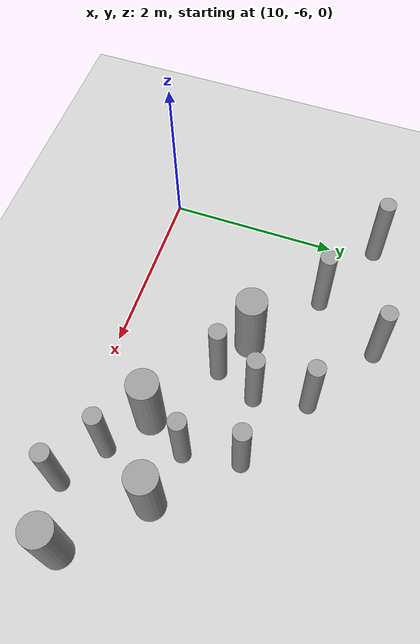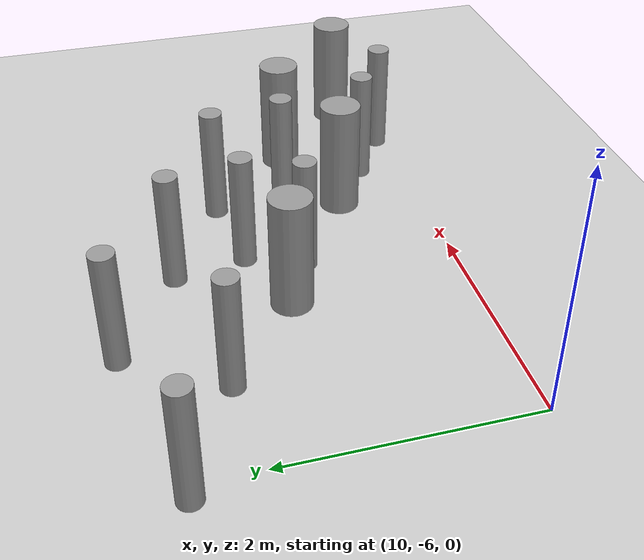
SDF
<sdf version="1.6">
 <world name="default">
  <model name="ground_plane">
   <static>1</static>
   <link name="link">
    <collision name="collision">
     <geometry><plane><normal>0 0 1</normal><size>100 100</size></plane></geometry>
     <surface><friction><ode><mu>100</mu><mu2>50</mu2></ode></friction></surface>
    </collision>
    <visual name="visual">
     <cast_shadows>0</cast_shadows>
     <geometry><plane><normal>0 0 1</normal><size>100 100</size></plane></geometry>
     <material>
      <script><uri>file://media/materials/scripts/gazebo.material</uri><name>Gazebo/Grey</name></script>
     </material>
    </visual>
   </link>
  </model>
  <model name="cyl_wall_clone_clone_1_clone">
   <link name="link_0">
    <pose>-2.73893 -0.366465 0 0 -0 0</pose>
    <inertial>
     <mass>0.0374993</mass>
     <inertia>
      <ixx>0.00321281</ixx>
      <ixy>0</ixy>
      <ixz>0</ixz>
      <iyy>0.00321281</iyy>
      <iyz>0</iyz>
      <izz>0.000175774</izz>
     </inertia>
    </inertial>
    <visual name="visual">
     <geometry><cylinder><radius>0.0968661</radius><length>1</length></cylinder></geometry>
     <material>
      <lighting>1</lighting>
      <script><uri>file://media/materials/scripts/gazebo.material</uri><name>Gazebo/Grey</name></script>
      <ambient>0.3 0.3 0.3 1</ambient>
      <diffuse>0.7 0.7 0.7 1</diffuse>
      <specular>0.01 0.01 0.01 1</specular>
      <emissive>0 0 0 1</emissive>
     </material>
    </visual>
    <collision name="collision">
     <geometry><cylinder><radius>0.096866</radius><length>1</length></cylinder></geometry>
     <surface>
      <friction>
       <ode><mu>1</mu><mu2>1</mu2><fdir1>0 0 0</fdir1><slip1>0</slip1><slip2>0</slip2></ode>
       <torsional>
        <coefficient>1</coefficient>
        <patch_radius>0</patch_radius>
        <surface_radius>0</surface_radius>
        <use_patch_radius>1</use_patch_radius>
        <ode><slip>0</slip></ode>
       </torsional>
      </friction>
      <bounce><restitution_coefficient>0</restitution_coefficient><threshold>1e+06</threshold></bounce>
      <contact>
       <collide_without_contact>0</collide_without_contact>
       <collide_without_contact_bitmask>1</collide_without_contact_bitmask>
       <collide_bitmask>1</collide_bitmask>
       <ode>
        <soft_cfm>0</soft_cfm>
        <soft_erp>0.2</soft_erp>
        <kp>1e+13</kp>
        <kd>1</kd>
        <max_vel>0.01</max_vel>
        <min_depth>0</min_depth>
       </ode>
       <bullet>
        <split_impulse>1</split_impulse>
        <split_impulse_penetration_threshold>-0.01</split_impulse_penetration_threshold>
        <soft_cfm>0</soft_cfm>
        <soft_erp>0.2</soft_erp>
        <kp>1e+13</kp>
        <kd>1</kd>
       </bullet>
      </contact>
     </surface>
    </collision>
   </link>
   <link name="link_0_clone">
    <pose>-1.73893 0.61877 0 0 -0 0</pose>
    <inertial>
     <mass>0.0374993</mass>
     <inertia>
      <ixx>0.00321281</ixx>
      <ixy>0</ixy>
      <ixz>0</ixz>
      <iyy>0.00321281</iyy>
      <iyz>0</iyz>
      <izz>0.000175774</izz>
     </inertia>
    </inertial>
    <visual name="visual">
     <geometry><cylinder><radius>0.0968661</radius><length>1</length></cylinder></geometry>
     <material>
      <lighting>1</lighting>
      <script><uri>file://media/materials/scripts/gazebo.material</uri><name>Gazebo/Grey</name></script>
      <ambient>0.3 0.3 0.3 1</ambient>
      <diffuse>0.7 0.7 0.7 1</diffuse>
      <specular>0.01 0.01 0.01 1</specular>
      <emissive>0 0 0 1</emissive>
      <shader type="pixel"/>
     </material>
    </visual>
    <collision name="collision">
     <geometry><cylinder><radius>0.096866</radius><length>1</length></cylinder></geometry>
     <surface>
      <friction>
       <ode><mu>1</mu><mu2>1</mu2><fdir1>0 0 0</fdir1><slip1>0</slip1><slip2>0</slip2></ode>
       <torsional>
        <coefficient>1</coefficient>
        <patch_radius>0</patch_radius>
        <surface_radius>0</surface_radius>
        <use_patch_radius>1</use_patch_radius>
        <ode><slip>0</slip></ode>
       </torsional>
      </friction>
      <bounce><restitution_coefficient>0</restitution_coefficient><threshold>1e+06</threshold></bounce>
      <contact>
       <collide_without_contact>0</collide_without_contact>
       <collide_without_contact_bitmask>1</collide_without_contact_bitmask>
       <collide_bitmask>1</collide_bitmask>
       <ode>
        <soft_cfm>0</soft_cfm>
        <soft_erp>0.2</soft_erp>
        <kp>1e+13</kp>
        <kd>1</kd>
        <max_vel>0.01</max_vel>
        <min_depth>0</min_depth>
       </ode>
       <bullet>
        <split_impulse>1</split_impulse>
        <split_impulse_penetration_threshold>-0.01</split_impulse_penetration_threshold>
        <soft_cfm>0</soft_cfm>
        <soft_erp>0.2</soft_erp>
        <kp>1e+13</kp>
        <kd>1</kd>
       </bullet>
      </contact>
     </surface>
    </collision>
   </link>
   <link name="link_0_clone_clone">
    <pose>-0.327073 0.143919 0 0 -0 0</pose>
    <inertial>
     <mass>0.0374993</mass>
     <inertia>
      <ixx>0.00321281</ixx>
      <ixy>0</ixy>
      <ixz>0</ixz>
      <iyy>0.00321281</iyy>
      <iyz>0</iyz>
      <izz>0.000175774</izz>
     </inertia>
    </inertial>
    <visual name="visual">
     <geometry><cylinder><radius>0.0968661</radius><length>1</length></cylinder></geometry>
     <material>
      <lighting>1</lighting>
      <script><uri>file://media/materials/scripts/gazebo.material</uri><name>Gazebo/Grey</name></script>
      <ambient>0.3 0.3 0.3 1</ambient>
      <diffuse>0.7 0.7 0.7 1</diffuse>
      <specular>0.01 0.01 0.01 1</specular>
      <emissive>0 0 0 1</emissive>
      <shader type="pixel"/>
     </material>
    </visual>
    <collision name="collision">
     <geometry><cylinder><radius>0.096866</radius><length>1</length></cylinder></geometry>
     <surface>
      <friction>
       <ode><mu>1</mu><mu2>1</mu2><fdir1>0 0 0</fdir1><slip1>0</slip1><slip2>0</slip2></ode>
       <torsional>
        <coefficient>1</coefficient>
        <patch_radius>0</patch_radius>
        <surface_radius>0</surface_radius>
        <use_patch_radius>1</use_patch_radius>
        <ode><slip>0</slip></ode>
       </torsional>
      </friction>
      <bounce><restitution_coefficient>0</restitution_coefficient><threshold>1e+06</threshold></bounce>
      <contact>
       <collide_without_contact>0</collide_without_contact>
       <collide_without_contact_bitmask>1</collide_without_contact_bitmask>
       <collide_bitmask>1</collide_bitmask>
       <ode>
        <soft_cfm>0</soft_cfm>
        <soft_erp>0.2</soft_erp>
        <kp>1e+13</kp>
        <kd>1</kd>
        <max_vel>0.01</max_vel>
        <min_depth>0</min_depth>
       </ode>
       <bullet>
        <split_impulse>1</split_impulse>
        <split_impulse_penetration_threshold>-0.01</split_impulse_penetration_threshold>
        <soft_cfm>0</soft_cfm>
        <soft_erp>0.2</soft_erp>
        <kp>1e+13</kp>
        <kd>1</kd>
       </bullet>
      </contact>
     </surface>
    </collision>
   </link>
   <link name="link_0_clone_clone_0">
    <pose>1.26107 -0.419359 0 0 -0 0</pose>
    <inertial>
     <mass>0.0374993</mass>
     <inertia>
      <ixx>0.00321281</ixx>
      <ixy>0</ixy>
      <ixz>0</ixz>
      <iyy>0.00321281</iyy>
      <iyz>0</iyz>
      <izz>0.000175774</izz>
     </inertia>
    </inertial>
    <visual name="visual">
     <geometry><cylinder><radius>0.0968661</radius><length>1</length></cylinder></geometry>
     <material>
      <lighting>1</lighting>
      <script><uri>file://media/materials/scripts/gazebo.material</uri><name>Gazebo/Grey</name></script>
      <ambient>0.3 0.3 0.3 1</ambient>
      <diffuse>0.7 0.7 0.7 1</diffuse>
      <specular>0.01 0.01 0.01 1</specular>
      <emissive>0 0 0 1</emissive>
      <shader type="pixel"/>
     </material>
    </visual>
    <collision name="collision">
     <geometry><cylinder><radius>0.096866</radius><length>1</length></cylinder></geometry>
     <surface>
      <friction>
       <ode><mu>1</mu><mu2>1</mu2><fdir1>0 0 0</fdir1><slip1>0</slip1><slip2>0</slip2></ode>
       <torsional>
        <coefficient>1</coefficient>
        <patch_radius>0</patch_radius>
        <surface_radius>0</surface_radius>
        <use_patch_radius>1</use_patch_radius>
        <ode><slip>0</slip></ode>
       </torsional>
      </friction>
      <bounce><restitution_coefficient>0</restitution_coefficient><threshold>1e+06</threshold></bounce>
      <contact>
       <collide_without_contact>0</collide_without_contact>
       <collide_without_contact_bitmask>1</collide_without_contact_bitmask>
       <collide_bitmask>1</collide_bitmask>
       <ode>
        <soft_cfm>0</soft_cfm>
        <soft_erp>0.2</soft_erp>
        <kp>1e+13</kp>
        <kd>1</kd>
        <max_vel>0.01</max_vel>
        <min_depth>0</min_depth>
       </ode>
       <bullet>
        <split_impulse>1</split_impulse>
        <split_impulse_penetration_threshold>-0.01</split_impulse_penetration_threshold>
        <soft_cfm>0</soft_cfm>
        <soft_erp>0.2</soft_erp>
        <kp>1e+13</kp>
        <kd>1</kd>
       </bullet>
      </contact>
     </surface>
    </collision>
   </link>
   <link name="link_0_clone_clone_1">
    <pose>-1.73893 -0.277168 0 0 -0 0</pose>
    <inertial>
     <mass>0.0374993</mass>
     <inertia>
      <ixx>0.00321281</ixx>
      <ixy>0</ixy>
      <ixz>0</ixz>
      <iyy>0.00321281</iyy>
      <iyz>0</iyz>
      <izz>0.000175774</izz>
     </inertia>
    </inertial>
    <visual name="visual">
     <geometry><cylinder><radius>0.0968661</radius><length>1</length></cylinder></geometry>
     <material>
      <lighting>1</lighting>
      <script><uri>file://media/materials/scripts/gazebo.material</uri><name>Gazebo/Grey</name></script>
      <ambient>0.3 0.3 0.3 1</ambient>
      <diffuse>0.7 0.7 0.7 1</diffuse>
      <specular>0.01 0.01 0.01 1</specular>
      <emissive>0 0 0 1</emissive>
      <shader type="pixel"/>
     </material>
    </visual>
    <collision name="collision">
     <geometry><cylinder><radius>0.096866</radius><length>1</length></cylinder></geometry>
     <surface>
      <friction>
       <ode><mu>1</mu><mu2>1</mu2><fdir1>0 0 0</fdir1><slip1>0</slip1><slip2>0</slip2></ode>
       <torsional>
        <coefficient>1</coefficient>
        <patch_radius>0</patch_radius>
        <surface_radius>0</surface_radius>
        <use_patch_radius>1</use_patch_radius>
        <ode><slip>0</slip></ode>
       </torsional>
      </friction>
      <bounce><restitution_coefficient>0</restitution_coefficient><threshold>1e+06</threshold></bounce>
      <contact>
       <collide_without_contact>0</collide_without_contact>
       <collide_without_contact_bitmask>1</collide_without_contact_bitmask>
       <collide_bitmask>1</collide_bitmask>
       <ode>
        <soft_cfm>0</soft_cfm>
        <soft_erp>0.2</soft_erp>
        <kp>1e+13</kp>
        <kd>1</kd>
        <max_vel>0.01</max_vel>
        <min_depth>0</min_depth>
       </ode>
       <bullet>
        <split_impulse>1</split_impulse>
        <split_impulse_penetration_threshold>-0.01</split_impulse_penetration_threshold>
        <soft_cfm>0</soft_cfm>
        <soft_erp>0.2</soft_erp>
        <kp>1e+13</kp>
        <kd>1</kd>
       </bullet>
      </contact>
     </surface>
    </collision>
   </link>
   <link name="link_0_clone_clone_2">
    <pose>-0.738934 0.593961 0 0 -0 0</pose>
    <inertial>
     <mass>0.0374993</mass>
     <inertia>
      <ixx>0.00321281</ixx>
      <ixy>0</ixy>
      <ixz>0</ixz>
      <iyy>0.00321281</iyy>
      <iyz>0</iyz>
      <izz>0.000175774</izz>
     </inertia>
    </inertial>
    <visual name="visual">
     <geometry><cylinder><radius>0.0968661</radius><length>1</length></cylinder></geometry>
     <material>
      <lighting>1</lighting>
      <script><uri>file://media/materials/scripts/gazebo.material</uri><name>Gazebo/Grey</name></script>
      <ambient>0.3 0.3 0.3 1</ambient>
      <diffuse>0.7 0.7 0.7 1</diffuse>
      <specular>0.01 0.01 0.01 1</specular>
      <emissive>0 0 0 1</emissive>
      <shader type="pixel"/>
     </material>
    </visual>
    <collision name="collision">
     <geometry><cylinder><radius>0.096866</radius><length>1</length></cylinder></geometry>
     <surface>
      <friction>
       <ode><mu>1</mu><mu2>1</mu2><fdir1>0 0 0</fdir1><slip1>0</slip1><slip2>0</slip2></ode>
       <torsional>
        <coefficient>1</coefficient>
        <patch_radius>0</patch_radius>
        <surface_radius>0</surface_radius>
        <use_patch_radius>1</use_patch_radius>
        <ode><slip>0</slip></ode>
       </torsional>
      </friction>
      <bounce><restitution_coefficient>0</restitution_coefficient><threshold>1e+06</threshold></bounce>
      <contact>
       <collide_without_contact>0</collide_without_contact>
       <collide_without_contact_bitmask>1</collide_without_contact_bitmask>
       <collide_bitmask>1</collide_bitmask>
       <ode>
        <soft_cfm>0</soft_cfm>
        <soft_erp>0.2</soft_erp>
        <kp>1e+13</kp>
        <kd>1</kd>
        <max_vel>0.01</max_vel>
        <min_depth>0</min_depth>
       </ode>
       <bullet>
        <split_impulse>1</split_impulse>
        <split_impulse_penetration_threshold>-0.01</split_impulse_penetration_threshold>
        <soft_cfm>0</soft_cfm>
        <soft_erp>0.2</soft_erp>
        <kp>1e+13</kp>
        <kd>1</kd>
       </bullet>
      </contact>
     </surface>
    </collision>
   </link>
   <link name="link_0_clone_clone_3">
    <pose>0.261066 0.624849 0 0 -0 0</pose>
    <inertial>
     <mass>0.0374993</mass>
     <inertia>
      <ixx>0.00321281</ixx>
      <ixy>0</ixy>
      <ixz>0</ixz>
      <iyy>0.00321281</iyy>
      <iyz>0</iyz>
      <izz>0.000175774</izz>
     </inertia>
    </inertial>
    <visual name="visual">
     <geometry><cylinder><radius>0.0968661</radius><length>1</length></cylinder></geometry>
     <material>
      <lighting>1</lighting>
      <script><uri>file://media/materials/scripts/gazebo.material</uri><name>Gazebo/Grey</name></script>
      <ambient>0.3 0.3 0.3 1</ambient>
      <diffuse>0.7 0.7 0.7 1</diffuse>
      <specular>0.01 0.01 0.01 1</specular>
      <emissive>0 0 0 1</emissive>
      <shader type="pixel"/>
     </material>
    </visual>
    <collision name="collision">
     <geometry><cylinder><radius>0.096866</radius><length>1</length></cylinder></geometry>
     <surface>
      <friction>
       <ode><mu>1</mu><mu2>1</mu2><fdir1>0 0 0</fdir1><slip1>0</slip1><slip2>0</slip2></ode>
       <torsional>
        <coefficient>1</coefficient>
        <patch_radius>0</patch_radius>
        <surface_radius>0</surface_radius>
        <use_patch_radius>1</use_patch_radius>
        <ode><slip>0</slip></ode>
       </torsional>
      </friction>
      <bounce><restitution_coefficient>0</restitution_coefficient><threshold>1e+06</threshold></bounce>
      <contact>
       <collide_without_contact>0</collide_without_contact>
       <collide_without_contact_bitmask>1</collide_without_contact_bitmask>
       <collide_bitmask>1</collide_bitmask>
       <ode>
        <soft_cfm>0</soft_cfm>
        <soft_erp>0.2</soft_erp>
        <kp>1e+13</kp>
        <kd>1</kd>
        <max_vel>0.01</max_vel>
        <min_depth>0</min_depth>
       </ode>
       <bullet>
        <split_impulse>1</split_impulse>
        <split_impulse_penetration_threshold>-0.01</split_impulse_penetration_threshold>
        <soft_cfm>0</soft_cfm>
        <soft_erp>0.2</soft_erp>
        <kp>1e+13</kp>
        <kd>1</kd>
       </bullet>
      </contact>
     </surface>
    </collision>
   </link>
   <link name="link_0_clone_clone_4">
    <pose>-0.239049 -0.353105 0 0 -0 0</pose>
    <inertial>
     <mass>0.0374993</mass>
     <inertia>
      <ixx>0.00321281</ixx>
      <ixy>0</ixy>
      <ixz>0</ixz>
      <iyy>0.00321281</iyy>
      <iyz>0</iyz>
      <izz>0.000175774</izz>
     </inertia>
    </inertial>
    <visual name="visual">
     <geometry><cylinder><radius>0.0968661</radius><length>1</length></cylinder></geometry>
     <material>
      <lighting>1</lighting>
      <script><uri>file://media/materials/scripts/gazebo.material</uri><name>Gazebo/Grey</name></script>
      <ambient>0.3 0.3 0.3 1</ambient>
      <diffuse>0.7 0.7 0.7 1</diffuse>
      <specular>0.01 0.01 0.01 1</specular>
      <emissive>0 0 0 1</emissive>
      <shader type="pixel"/>
     </material>
    </visual>
    <collision name="collision">
     <geometry><cylinder><radius>0.096866</radius><length>1</length></cylinder></geometry>
     <surface>
      <friction>
       <ode><mu>1</mu><mu2>1</mu2><fdir1>0 0 0</fdir1><slip1>0</slip1><slip2>0</slip2></ode>
       <torsional>
        <coefficient>1</coefficient>
        <patch_radius>0</patch_radius>
        <surface_radius>0</surface_radius>
        <use_patch_radius>1</use_patch_radius>
        <ode><slip>0</slip></ode>
       </torsional>
      </friction>
      <bounce><restitution_coefficient>0</restitution_coefficient><threshold>1e+06</threshold></bounce>
      <contact>
       <collide_without_contact>0</collide_without_contact>
       <collide_without_contact_bitmask>1</collide_without_contact_bitmask>
       <collide_bitmask>1</collide_bitmask>
       <ode>
        <soft_cfm>0</soft_cfm>
        <soft_erp>0.2</soft_erp>
        <kp>1e+13</kp>
        <kd>1</kd>
        <max_vel>0.01</max_vel>
        <min_depth>0</min_depth>
       </ode>
       <bullet>
        <split_impulse>1</split_impulse>
        <split_impulse_penetration_threshold>-0.01</split_impulse_penetration_threshold>
        <soft_cfm>0</soft_cfm>
        <soft_erp>0.2</soft_erp>
        <kp>1e+13</kp>
        <kd>1</kd>
       </bullet>
      </contact>
     </surface>
    </collision>
   </link>
   <link name="link_0_clone_clone_5">
    <pose>0.672792 0.143919 0 0 -0 0</pose>
    <inertial>
     <mass>0.0374993</mass>
     <inertia>
      <ixx>0.00321281</ixx>
      <ixy>0</ixy>
      <ixz>0</ixz>
      <iyy>0.00321281</iyy>
      <iyz>0</iyz>
      <izz>0.000175774</izz>
     </inertia>
    </inertial>
    <visual name="visual">
     <geometry><cylinder><radius>0.0968661</radius><length>1</length></cylinder></geometry>
     <material>
      <lighting>1</lighting>
      <script><uri>file://media/materials/scripts/gazebo.material</uri><name>Gazebo/Grey</name></script>
      <ambient>0.3 0.3 0.3 1</ambient>
      <diffuse>0.7 0.7 0.7 1</diffuse>
      <specular>0.01 0.01 0.01 1</specular>
      <emissive>0 0 0 1</emissive>
      <shader type="pixel"/>
     </material>
    </visual>
    <collision name="collision">
     <geometry><cylinder><radius>0.096866</radius><length>1</length></cylinder></geometry>
     <surface>
      <friction>
       <ode><mu>1</mu><mu2>1</mu2><fdir1>0 0 0</fdir1><slip1>0</slip1><slip2>0</slip2></ode>
       <torsional>
        <coefficient>1</coefficient>
        <patch_radius>0</patch_radius>
        <surface_radius>0</surface_radius>
        <use_patch_radius>1</use_patch_radius>
        <ode><slip>0</slip></ode>
       </torsional>
      </friction>
      <bounce><restitution_coefficient>0</restitution_coefficient><threshold>1e+06</threshold></bounce>
      <contact>
       <collide_without_contact>0</collide_without_contact>
       <collide_without_contact_bitmask>1</collide_without_contact_bitmask>
       <collide_bitmask>1</collide_bitmask>
       <ode>
        <soft_cfm>0</soft_cfm>
        <soft_erp>0.2</soft_erp>
        <kp>1e+13</kp>
        <kd>1</kd>
        <max_vel>0.01</max_vel>
        <min_depth>0</min_depth>
       </ode>
       <bullet>
        <split_impulse>1</split_impulse>
        <split_impulse_penetration_threshold>-0.01</split_impulse_penetration_threshold>
        <soft_cfm>0</soft_cfm>
        <soft_erp>0.2</soft_erp>
        <kp>1e+13</kp>
        <kd>1</kd>
       </bullet>
      </contact>
     </surface>
    </collision>
   </link>
   <link name="link_0_clone_clone_6">
    <pose>1.84596 -0.433423 0 0 -0 0</pose>
    <inertial>
     <mass>0.0374993</mass>
     <inertia>
      <ixx>0.00321281</ixx>
      <ixy>0</ixy>
      <ixz>0</ixz>
      <iyy>0.00321281</iyy>
      <iyz>0</iyz>
      <izz>0.000175774</izz>
     </inertia>
    </inertial>
    <visual name="visual">
     <geometry><cylinder><radius>0.0968661</radius><length>1</length></cylinder></geometry>
     <material>
      <lighting>1</lighting>
      <script><uri>file://media/materials/scripts/gazebo.material</uri><name>Gazebo/Grey</name></script>
      <ambient>0.3 0.3 0.3 1</ambient>
      <diffuse>0.7 0.7 0.7 1</diffuse>
      <specular>0.01 0.01 0.01 1</specular>
      <emissive>0 0 0 1</emissive>
      <shader type="pixel"/>
     </material>
    </visual>
    <collision name="collision">
     <geometry><cylinder><radius>0.096866</radius><length>1</length></cylinder></geometry>
     <surface>
      <friction>
       <ode><mu>1</mu><mu2>1</mu2><fdir1>0 0 0</fdir1><slip1>0</slip1><slip2>0</slip2></ode>
       <torsional>
        <coefficient>1</coefficient>
        <patch_radius>0</patch_radius>
        <surface_radius>0</surface_radius>
        <use_patch_radius>1</use_patch_radius>
        <ode><slip>0</slip></ode>
       </torsional>
      </friction>
      <bounce><restitution_coefficient>0</restitution_coefficient><threshold>1e+06</threshold></bounce>
      <contact>
       <collide_without_contact>0</collide_without_contact>
       <collide_without_contact_bitmask>1</collide_without_contact_bitmask>
       <collide_bitmask>1</collide_bitmask>
       <ode>
        <soft_cfm>0</soft_cfm>
        <soft_erp>0.2</soft_erp>
        <kp>1e+13</kp>
        <kd>1</kd>
        <max_vel>0.01</max_vel>
        <min_depth>0</min_depth>
       </ode>
       <bullet>
        <split_impulse>1</split_impulse>
        <split_impulse_penetration_threshold>-0.01</split_impulse_penetration_threshold>
        <soft_cfm>0</soft_cfm>
        <soft_erp>0.2</soft_erp>
        <kp>1e+13</kp>
        <kd>1</kd>
       </bullet>
      </contact>
     </surface>
    </collision>
   </link>
   <link name="link_1">
    <pose>-0.738934 -0.397931 0 0 -0 0</pose>
    <inertial>
     <mass>0.117398</mass>
     <inertia>
      <ixx>0.0106445</ixx>
      <ixy>0</ixy>
      <ixz>0</ixz>
      <iyy>0.0106445</iyy>
      <iyz>0</iyz>
      <izz>0.00172278</izz>
     </inertia>
    </inertial>
    <visual name="visual">
     <geometry><cylinder><radius>0.171317</radius><length>1</length></cylinder></geometry>
     <material>
      <lighting>1</lighting>
      <script><uri>file://media/materials/scripts/gazebo.material</uri><name>Gazebo/Grey</name></script>
      <ambient>0.3 0.3 0.3 1</ambient>
      <diffuse>0.7 0.7 0.7 1</diffuse>
      <specular>0.01 0.01 0.01 1</specular>
      <emissive>0 0 0 1</emissive>
     </material>
    </visual>
    <collision name="collision">
     <geometry><cylinder><radius>0.171317</radius><length>1</length></cylinder></geometry>
     <surface>
      <friction>
       <ode><mu>1</mu><mu2>1</mu2><fdir1>0 0 0</fdir1><slip1>0</slip1><slip2>0</slip2></ode>
       <torsional>
        <coefficient>1</coefficient>
        <patch_radius>0</patch_radius>
        <surface_radius>0</surface_radius>
        <use_patch_radius>1</use_patch_radius>
        <ode><slip>0</slip></ode>
       </torsional>
      </friction>
      <bounce><restitution_coefficient>0</restitution_coefficient><threshold>1e+06</threshold></bounce>
      <contact>
       <collide_without_contact>0</collide_without_contact>
       <collide_without_contact_bitmask>1</collide_without_contact_bitmask>
       <collide_bitmask>1</collide_bitmask>
       <ode>
        <soft_cfm>0</soft_cfm>
        <soft_erp>0.2</soft_erp>
        <kp>1e+13</kp>
        <kd>1</kd>
        <max_vel>0.01</max_vel>
        <min_depth>0</min_depth>
       </ode>
       <bullet>
        <split_impulse>1</split_impulse>
        <split_impulse_penetration_threshold>-0.01</split_impulse_penetration_threshold>
        <soft_cfm>0</soft_cfm>
        <soft_erp>0.2</soft_erp>
        <kp>1e+13</kp>
        <kd>1</kd>
       </bullet>
      </contact>
     </surface>
    </collision>
   </link>
   <link name="link_1_clone">
    <pose>0.697784 -0.380861 0 0 -0 0</pose>
    <inertial>
     <mass>0.117398</mass>
     <inertia>
      <ixx>0.0106445</ixx>
      <ixy>0</ixy>
      <ixz>0</ixz>
      <iyy>0.0106445</iyy>
      <iyz>0</iyz>
      <izz>0.00172278</izz>
     </inertia>
    </inertial>
    <visual name="visual">
     <geometry><cylinder><radius>0.171317</radius><length>1</length></cylinder></geometry>
     <material>
      <lighting>1</lighting>
      <script><uri>file://media/materials/scripts/gazebo.material</uri><name>Gazebo/Grey</name></script>
      <ambient>0.3 0.3 0.3 1</ambient>
      <diffuse>0.7 0.7 0.7 1</diffuse>
      <specular>0.01 0.01 0.01 1</specular>
      <emissive>0 0 0 1</emissive>
      <shader type="pixel"/>
     </material>
    </visual>
    <collision name="collision">
     <geometry><cylinder><radius>0.171317</radius><length>1</length></cylinder></geometry>
     <surface>
      <friction>
       <ode><mu>1</mu><mu2>1</mu2><fdir1>0 0 0</fdir1><slip1>0</slip1><slip2>0</slip2></ode>
       <torsional>
        <coefficient>1</coefficient>
        <patch_radius>0</patch_radius>
        <surface_radius>0</surface_radius>
        <use_patch_radius>1</use_patch_radius>
        <ode><slip>0</slip></ode>
       </torsional>
      </friction>
      <bounce><restitution_coefficient>0</restitution_coefficient><threshold>1e+06</threshold></bounce>
      <contact>
       <collide_without_contact>0</collide_without_contact>
       <collide_without_contact_bitmask>1</collide_without_contact_bitmask>
       <collide_bitmask>1</collide_bitmask>
       <ode>
        <soft_cfm>0</soft_cfm>
        <soft_erp>0.2</soft_erp>
        <kp>1e+13</kp>
        <kd>1</kd>
        <max_vel>0.01</max_vel>
        <min_depth>0</min_depth>
       </ode>
       <bullet>
        <split_impulse>1</split_impulse>
        <split_impulse_penetration_threshold>-0.01</split_impulse_penetration_threshold>
        <soft_cfm>0</soft_cfm>
        <soft_erp>0.2</soft_erp>
        <kp>1e+13</kp>
        <kd>1</kd>
       </bullet>
      </contact>
     </surface>
    </collision>
   </link>
   <link name="link_1_clone_0">
    <pose>1.26107 0.358974 0 0 -0 0</pose>
    <inertial>
     <mass>0.117398</mass>
     <inertia>
      <ixx>0.0106445</ixx>
      <ixy>0</ixy>
      <ixz>0</ixz>
      <iyy>0.0106445</iyy>
      <iyz>0</iyz>
      <izz>0.00172278</izz>
     </inertia>
    </inertial>
    <visual name="visual">
     <geometry><cylinder><radius>0.171317</radius><length>1</length></cylinder></geometry>
     <material>
      <lighting>1</lighting>
      <script><uri>file://media/materials/scripts/gazebo.material</uri><name>Gazebo/Grey</name></script>
      <ambient>0.3 0.3 0.3 1</ambient>
      <diffuse>0.7 0.7 0.7 1</diffuse>
      <specular>0.01 0.01 0.01 1</specular>
      <emissive>0 0 0 1</emissive>
      <shader type="pixel"/>
     </material>
    </visual>
    <collision name="collision">
     <geometry><cylinder><radius>0.171317</radius><length>1</length></cylinder></geometry>
     <surface>
      <friction>
       <ode><mu>1</mu><mu2>1</mu2><fdir1>0 0 0</fdir1><slip1>0</slip1><slip2>0</slip2></ode>
       <torsional>
        <coefficient>1</coefficient>
        <patch_radius>0</patch_radius>
        <surface_radius>0</surface_radius>
        <use_patch_radius>1</use_patch_radius>
        <ode><slip>0</slip></ode>
       </torsional>
      </friction>
      <bounce><restitution_coefficient>0</restitution_coefficient><threshold>1e+06</threshold></bounce>
      <contact>
       <collide_without_contact>0</collide_without_contact>
       <collide_without_contact_bitmask>1</collide_without_contact_bitmask>
       <collide_bitmask>1</collide_bitmask>
       <ode>
        <soft_cfm>0</soft_cfm>
        <soft_erp>0.2</soft_erp>
        <kp>1e+13</kp>
        <kd>1</kd>
        <max_vel>0.01</max_vel>
        <min_depth>0</min_depth>
       </ode>
       <bullet>
        <split_impulse>1</split_impulse>
        <split_impulse_penetration_threshold>-0.01</split_impulse_penetration_threshold>
        <soft_cfm>0</soft_cfm>
        <soft_erp>0.2</soft_erp>
        <kp>1e+13</kp>
        <kd>1</kd>
       </bullet>
      </contact>
     </surface>
    </collision>
   </link>
   <link name="link_1_clone_1">
    <pose>2.26107 0.143919 0 0 -0 0</pose>
    <inertial>
     <mass>0.117398</mass>
     <inertia>
      <ixx>0.0106445</ixx>
      <ixy>0</ixy>
      <ixz>0</ixz>
      <iyy>0.0106445</iyy>
      <iyz>0</iyz>
      <izz>0.00172278</izz>
     </inertia>
    </inertial>
    <visual name="visual">
     <geometry><cylinder><radius>0.171317</radius><length>1</length></cylinder></geometry>
     <material>
      <lighting>1</lighting>
      <script><uri>file://media/materials/scripts/gazebo.material</uri><name>Gazebo/Grey</name></script>
      <ambient>0.3 0.3 0.3 1</ambient>
      <diffuse>0.7 0.7 0.7 1</diffuse>
      <specular>0.01 0.01 0.01 1</specular>
      <emissive>0 0 0 1</emissive>
      <shader type="pixel"/>
     </material>
    </visual>
    <collision name="collision">
     <geometry><cylinder><radius>0.171317</radius><length>1</length></cylinder></geometry>
     <surface>
      <friction>
       <ode><mu>1</mu><mu2>1</mu2><fdir1>0 0 0</fdir1><slip1>0</slip1><slip2>0</slip2></ode>
       <torsional>
        <coefficient>1</coefficient>
        <patch_radius>0</patch_radius>
        <surface_radius>0</surface_radius>
        <use_patch_radius>1</use_patch_radius>
        <ode><slip>0</slip></ode>
       </torsional>
      </friction>
      <bounce><restitution_coefficient>0</restitution_coefficient><threshold>1e+06</threshold></bounce>
      <contact>
       <collide_without_contact>0</collide_without_contact>
       <collide_without_contact_bitmask>1</collide_without_contact_bitmask>
       <collide_bitmask>1</collide_bitmask>
       <ode>
        <soft_cfm>0</soft_cfm>
        <soft_erp>0.2</soft_erp>
        <kp>1e+13</kp>
        <kd>1</kd>
        <max_vel>0.01</max_vel>
        <min_depth>0</min_depth>
       </ode>
       <bullet>
        <split_impulse>1</split_impulse>
        <split_impulse_penetration_threshold>-0.01</split_impulse_penetration_threshold>
        <soft_cfm>0</soft_cfm>
        <soft_erp>0.2</soft_erp>
        <kp>1e+13</kp>
        <kd>1</kd>
       </bullet>
      </contact>
     </surface>
    </collision>
   </link>
   <static>1</static>
   <pose>12.4218 -4.58958 0.5 0 0 -0.549185</pose>
  </model>
 </world>
</sdf>
